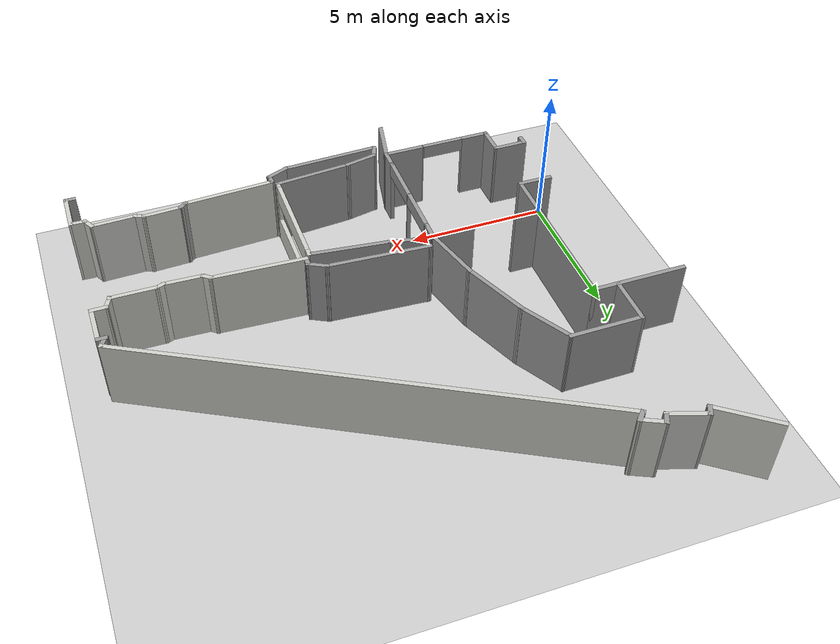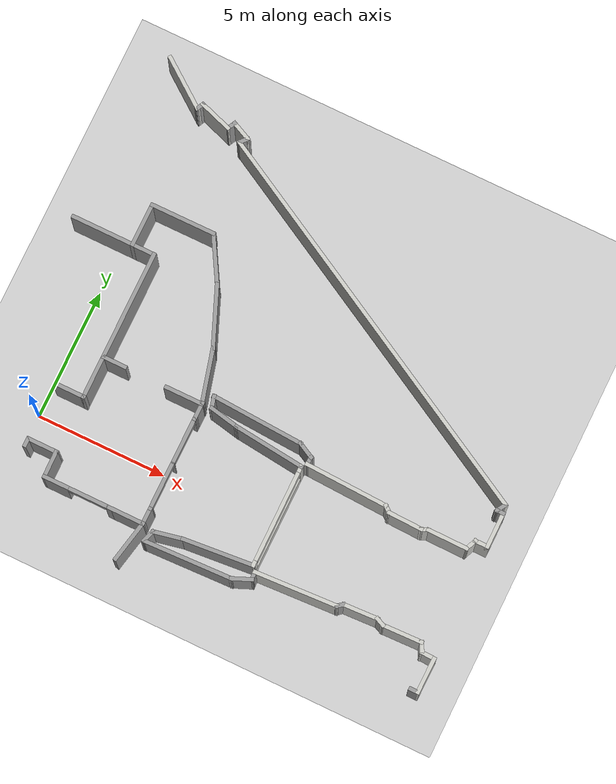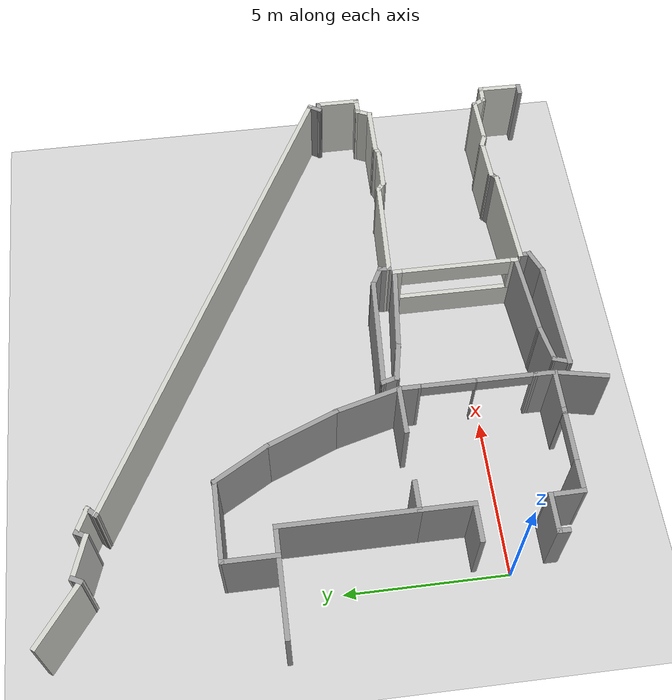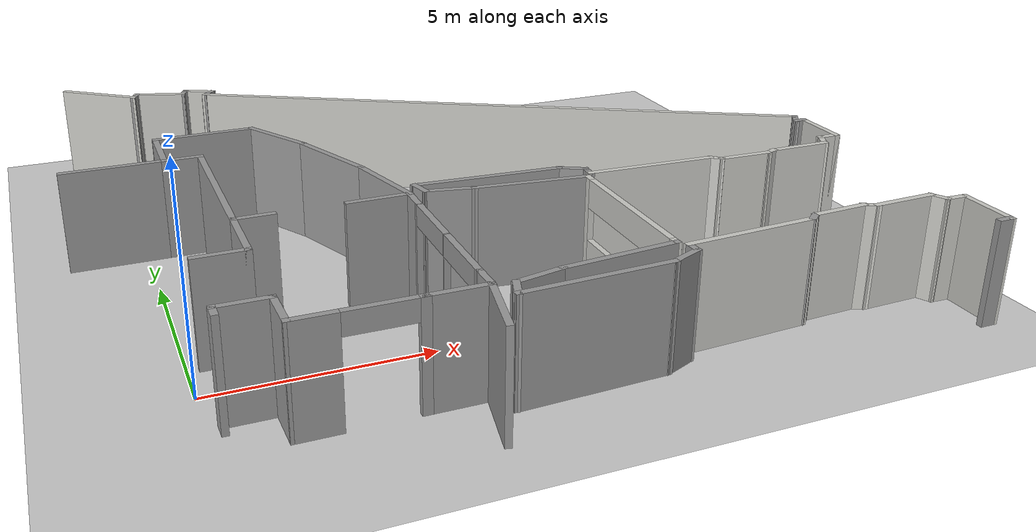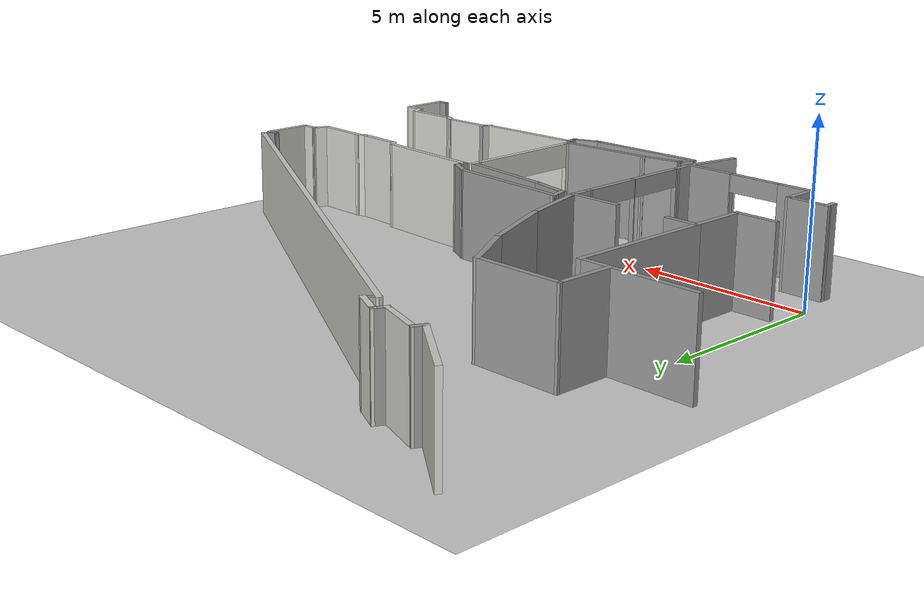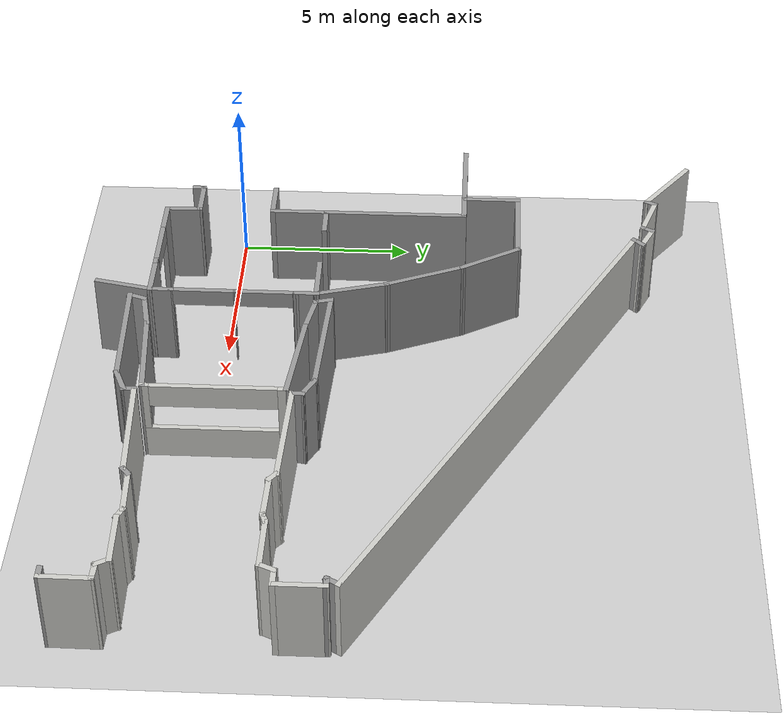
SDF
<sdf version="1.7">
 <world name="default">
  <model name="ground_plane">
   <static>1</static>
   <link name="link">
    <collision name="collision">
     <geometry><plane><normal>0 0 1</normal><size>100 100</size></plane></geometry>
     <surface>
      <contact><collide_bitmask>65535</collide_bitmask></contact>
      <friction><ode><mu>100</mu><mu2>50</mu2></ode></friction>
     </surface>
    </collision>
    <visual name="visual">
     <cast_shadows>0</cast_shadows>
     <geometry><plane><normal>0 0 1</normal><size>100 100</size></plane></geometry>
     <material>
      <script><uri>file://media/materials/scripts/gazebo.material</uri><name>Gazebo/Grey</name></script>
     </material>
    </visual>
   </link>
  </model>
  <model name="model">
   <pose>-4.1341 -0.05921 0 0 -0 0</pose>
   <link name="Wall_10">
    <collision name="Wall_10_Collision">
     <geometry><box><size>1.42547 0.15 2.5</size></box></geometry>
     <pose>0 0 1.25 0 -0 0</pose>
    </collision>
    <visual name="Wall_10_Visual">
     <pose>0 0 1.25 0 -0 0</pose>
     <geometry><box><size>1.42547 0.15 2.5</size></box></geometry>
     <material>
      <script><uri>file://media/materials/scripts/gazebo.material</uri><name>Gazebo/CeilingTiled</name></script>
      <ambient>1 1 1 1</ambient>
     </material>
     <meta><layer>0</layer></meta>
    </visual>
    <pose>17.742 2.04987 0 0 -0 3.11021</pose>
   </link>
   <link name="Wall_11">
    <collision name="Wall_11_Collision">
     <geometry><box><size>0.422349 0.15 2.5</size></box></geometry>
     <pose>0 0 1.25 0 -0 0</pose>
    </collision>
    <visual name="Wall_11_Visual">
     <pose>0 0 1.25 0 -0 0</pose>
     <geometry><box><size>0.422349 0.15 2.5</size></box></geometry>
     <material>
      <script><uri>file://media/materials/scripts/gazebo.material</uri><name>Gazebo/CeilingTiled</name></script>
      <ambient>1 1 1 1</ambient>
     </material>
     <meta><layer>0</layer></meta>
    </visual>
    <pose>16.9987 2.15564 0 0 -0 2.46029</pose>
   </link>
   <link name="Wall_118">
    <collision name="Wall_118_Collision">
     <geometry><box><size>2.26593 0.15 2.5</size></box></geometry>
     <pose>0 0 1.25 0 -0 0</pose>
    </collision>
    <visual name="Wall_118_Visual">
     <pose>0 0 1.25 0 -0 0</pose>
     <geometry><box><size>2.26593 0.15 2.5</size></box></geometry>
     <material>
      <script><uri>file://media/materials/scripts/gazebo.material</uri><name>Gazebo/CeilingTiled</name></script>
      <ambient>0.964706 1 0.972549 1</ambient>
     </material>
     <meta><layer>0</layer></meta>
    </visual>
    <pose>3.7645 12.9158 0 0 -0 2.50012</pose>
   </link>
   <link name="Wall_12">
    <collision name="Wall_12_Collision">
     <geometry><box><size>3.29739 0.15 2.5</size></box></geometry>
     <pose>0 0 1.25 0 -0 0</pose>
    </collision>
    <visual name="Wall_12_Visual">
     <pose>0 0 1.25 0 -0 0</pose>
     <geometry><box><size>3.29739 0.15 2.5</size></box></geometry>
     <material>
      <script><uri>file://media/materials/scripts/gazebo.material</uri><name>Gazebo/CeilingTiled</name></script>
      <ambient>0.964706 1 0.972549 1</ambient>
     </material>
     <meta><layer>0</layer></meta>
    </visual>
    <pose>15.3206 2.30716 0 0 -0 3.0998</pose>
   </link>
   <link name="Wall_124">
    <collision name="Wall_124_Collision">
     <geometry><box><size>0.404275 0.15 2.5</size></box></geometry>
     <pose>0 0 1.25 0 -0 0</pose>
    </collision>
    <visual name="Wall_124_Visual">
     <pose>0 0 1.25 0 -0 0</pose>
     <geometry><box><size>0.404275 0.15 2.5</size></box></geometry>
     <material>
      <script><uri>file://media/materials/scripts/gazebo.material</uri><name>Gazebo/Grey</name></script>
      <ambient>1 1 1 1</ambient>
     </material>
     <meta><layer>0</layer></meta>
    </visual>
    <pose>4.66935 12.3963 0 0 -0 1.10417</pose>
   </link>
   <link name="Wall_125">
    <collision name="Wall_125_Collision">
     <geometry><box><size>1.41013 0.15 2.5</size></box></geometry>
     <pose>0 0 1.25 0 -0 0</pose>
    </collision>
    <visual name="Wall_125_Visual">
     <pose>0 0 1.25 0 -0 0</pose>
     <geometry><box><size>1.41013 0.15 2.5</size></box></geometry>
     <material>
      <script><uri>file://media/materials/scripts/gazebo.material</uri><name>Gazebo/CeilingTiled</name></script>
      <ambient>0.964706 1 0.972549 1</ambient>
     </material>
     <meta><layer>0</layer></meta>
    </visual>
    <pose>5.3239 12.3095 0 0 -0 -0.323648</pose>
   </link>
   <link name="Wall_126">
    <collision name="Wall_126_Collision">
     <geometry><box><size>0.447598 0.15 2.5</size></box></geometry>
     <pose>0 0 1.25 0 -0 0</pose>
    </collision>
    <visual name="Wall_126_Visual">
     <pose>0 0 1.25 0 -0 0</pose>
     <geometry><box><size>0.447598 0.15 2.5</size></box></geometry>
     <material>
      <script><uri>file://media/materials/scripts/gazebo.material</uri><name>Gazebo/Grey</name></script>
      <ambient>1 1 1 1</ambient>
     </material>
     <meta><layer>0</layer></meta>
    </visual>
    <pose>5.98931 12.2414 0 0 -0 1.09579</pose>
   </link>
   <link name="Wall_127">
    <collision name="Wall_127_Collision">
     <geometry><box><size>0.894139 0.15 2.5</size></box></geometry>
     <pose>0 0 1.25 0 -0 0</pose>
    </collision>
    <visual name="Wall_127_Visual">
     <pose>0 0 1.25 0 -0 0</pose>
     <geometry><box><size>0.894139 0.15 2.5</size></box></geometry>
     <material>
      <script><uri>file://media/materials/scripts/gazebo.material</uri><name>Gazebo/CeilingTiled</name></script>
      <ambient>0.964706 1 0.972549 1</ambient>
     </material>
     <meta><layer>0</layer></meta>
    </visual>
    <pose>6.39384 12.215 0 0 -0 -0.440924</pose>
   </link>
   <link name="Wall_128">
    <collision name="Wall_128_Collision">
     <geometry><box><size>0.468928 0.15 2.5</size></box></geometry>
     <pose>0 0 1.25 0 -0 0</pose>
    </collision>
    <visual name="Wall_128_Visual">
     <pose>0 0 1.25 0 -0 0</pose>
     <geometry><box><size>0.468928 0.15 2.5</size></box></geometry>
     <material>
      <script><uri>file://media/materials/scripts/gazebo.material</uri><name>Gazebo/Grey</name></script>
      <ambient>1 1 1 1</ambient>
     </material>
     <meta><layer>0</layer></meta>
    </visual>
    <pose>6.62336 11.9379 0 0 -0 -2.30603</pose>
   </link>
   <link name="Wall_129">
    <collision name="Wall_129_Collision">
     <geometry><box><size>16.2931 0.15 2.5</size></box></geometry>
     <pose>0 0 1.25 0 -0 0</pose>
    </collision>
    <visual name="Wall_129_Visual">
     <pose>0 0 1.25 0 -0 0</pose>
     <geometry><box><size>16.2931 0.15 2.5</size></box></geometry>
     <material>
      <script><uri>file://media/materials/scripts/gazebo.material</uri><name>Gazebo/CeilingTiled</name></script>
      <ambient>0.964706 1 0.972549 1</ambient>
     </material>
     <meta><layer>0</layer></meta>
    </visual>
    <pose>13.6044 7.95817 0 0 -0 -0.498838</pose>
   </link>
   <link name="Wall_13">
    <collision name="Wall_13_Collision">
     <geometry><box><size>0.430684 0.15 2.5</size></box></geometry>
     <pose>0 0 1.25 0 -0 0</pose>
    </collision>
    <visual name="Wall_13_Visual">
     <pose>0 0 1.25 0 -0 0</pose>
     <geometry><box><size>0.430684 0.15 2.5</size></box></geometry>
     <material>
      <script><uri>file://media/materials/scripts/gazebo.material</uri><name>Gazebo/Grey</name></script>
      <ambient>1 1 1 1</ambient>
     </material>
     <meta><layer>0</layer></meta>
    </visual>
    <pose>13.7569 2.51299 0 0 -0 1.50965</pose>
   </link>
   <link name="Wall_16">
    <collision name="Wall_16_Collision">
     <geometry><box><size>0.771179 0.15 2.5</size></box></geometry>
     <pose>0 0 1.25 0 -0 0</pose>
    </collision>
    <visual name="Wall_16_Visual">
     <pose>0 0 1.25 0 -0 0</pose>
     <geometry><box><size>0.771179 0.15 2.5</size></box></geometry>
     <material>
      <script><uri>file://media/materials/scripts/gazebo.material</uri><name>Gazebo/Grey</name></script>
      <ambient>1 1 1 1</ambient>
     </material>
     <meta><layer>0</layer></meta>
    </visual>
    <pose>13.4901 2.7968 0 0 -0 2.6605</pose>
   </link>
   <link name="Wall_17">
    <collision name="Wall_17_Collision">
     <geometry><box><size>3.65354 0.15 2.5</size></box></geometry>
     <pose>0 0 1.25 0 -0 0</pose>
    </collision>
    <visual name="Wall_17_Visual">
     <pose>0 0 1.25 0 -0 0</pose>
     <geometry><box><size>3.65354 0.15 2.5</size></box></geometry>
     <material>
      <script><uri>file://media/materials/scripts/gazebo.material</uri><name>Gazebo/Grey</name></script>
      <ambient>1 1 1 1</ambient>
     </material>
     <meta><layer>0</layer></meta>
    </visual>
    <pose>11.4658 3.03915 0 0 -0 3.08526</pose>
   </link>
   <link name="Wall_18">
    <collision name="Wall_18_Collision">
     <geometry><box><size>0.585403 0.15 2.5</size></box></geometry>
     <pose>0 0 1.25 0 -0 0</pose>
    </collision>
    <visual name="Wall_18_Visual">
     <pose>0 0 1.25 0 -0 0</pose>
     <geometry><box><size>0.585403 0.15 2.5</size></box></geometry>
     <material>
      <script><uri>file://media/materials/scripts/gazebo.material</uri><name>Gazebo/Grey</name></script>
      <ambient>1 1 1 1</ambient>
     </material>
     <meta><layer>0</layer></meta>
    </visual>
    <pose>9.77269 2.92737 0 0 -0 -1.31117</pose>
   </link>
   <link name="Wall_19">
    <collision name="Wall_19_Collision">
     <geometry><box><size>1.25295 0.15 2.5</size></box></geometry>
     <pose>0 0 1.25 0 -0 0</pose>
    </collision>
    <visual name="Wall_19_Visual">
     <pose>0 0 1.25 0 -0 0</pose>
     <geometry><box><size>1.25295 0.15 2.5</size></box></geometry>
     <material>
      <script><uri>file://media/materials/scripts/gazebo.material</uri><name>Gazebo/Grey</name></script>
      <ambient>1 1 1 1</ambient>
     </material>
     <meta><layer>0</layer></meta>
    </visual>
    <pose>10.3696 2.61005 0 0 -0 -0.195106</pose>
   </link>
   <link name="Wall_2">
    <collision name="Wall_2_Collision">
     <geometry><box><size>0.5 0.15 2.5</size></box></geometry>
     <pose>0 0 1.25 0 -0 0</pose>
    </collision>
    <visual name="Wall_2_Visual">
     <pose>0 0 1.25 0 -0 0</pose>
     <geometry><box><size>0.5 0.15 2.5</size></box></geometry>
     <material>
      <script><uri>file://media/materials/scripts/gazebo.material</uri><name>Gazebo/Grey</name></script>
      <ambient>0.964706 1 0.972549 1</ambient>
     </material>
     <meta><layer>0</layer></meta>
    </visual>
    <pose>20.5997 3.94248 0 0 -0 -2.0944</pose>
   </link>
   <link name="Wall_20">
    <collision name="Wall_20_Collision">
     <geometry><box><size>2.84893 0.15 2.5</size></box></geometry>
     <pose>0 0 1.25 0 -0 0</pose>
    </collision>
    <visual name="Wall_20_Visual">
     <pose>0 0 1.25 0 -0 0</pose>
     <geometry><box><size>2.84893 0.15 2.5</size></box></geometry>
     <material>
      <script><uri>file://media/materials/scripts/gazebo.material</uri><name>Gazebo/Grey</name></script>
      <ambient>1 1 1 1</ambient>
     </material>
     <meta><layer>0</layer></meta>
    </visual>
    <pose>12.2519 2.35519 0 0 -0 -0.10985</pose>
   </link>
   <link name="Wall_208">
    <collision name="Wall_208_Collision">
     <geometry><box><size>0.413006 0.15 2.5</size></box></geometry>
     <pose>0 0 1.25 0 -0 0</pose>
    </collision>
    <visual name="Wall_208_Visual">
     <pose>0 0 1.25 0 -0 0</pose>
     <geometry><box><size>0.413006 0.15 2.5</size></box></geometry>
     <material>
      <script><uri>file://media/materials/scripts/gazebo.material</uri><name>Gazebo/Grey</name></script>
      <ambient>1 1 1 1</ambient>
     </material>
     <meta><layer>0</layer></meta>
    </visual>
    <pose>4.44758 -1.20894 0 0 -0 1.5708</pose>
   </link>
   <link name="Wall_212">
    <collision name="Wall_212_Collision">
     <geometry><box><size>1.46175 0.15 2.5</size></box></geometry>
     <pose>0 0 1.25 0 -0 0</pose>
    </collision>
    <visual name="Wall_212_Visual">
     <pose>0 0 1.25 0 -0 0</pose>
     <geometry><box><size>1.46175 0.15 2.5</size></box></geometry>
     <material>
      <script><uri>file://media/materials/scripts/gazebo.material</uri><name>Gazebo/Grey</name></script>
      <ambient>1 1 1 1</ambient>
     </material>
     <meta><layer>0</layer></meta>
    </visual>
    <pose>8.77888 -2.04713 0 0 -0 0</pose>
   </link>
   <link name="Wall_213">
    <collision name="Wall_213_Collision">
     <geometry><box><size>1.72597 0.15 2.5</size></box></geometry>
     <pose>0 0 1.25 0 -0 0</pose>
    </collision>
    <visual name="Wall_213_Visual">
     <pose>0 0 1.25 0 -0 0</pose>
     <geometry><box><size>1.72597 0.15 2.5</size></box></geometry>
     <material>
      <script><uri>file://media/materials/scripts/gazebo.material</uri><name>Gazebo/Grey</name></script>
      <ambient>1 1 1 1</ambient>
     </material>
     <meta><layer>0</layer></meta>
    </visual>
    <pose>9.27571 -2.81563 0 0 -0 -1.77403</pose>
   </link>
   <link name="Wall_223">
    <pose>6.86071 -2.04841 0 0 -0 3.14159</pose>
    <visual name="Wall_223_Visual_0">
     <pose>-1.26472 0 1.25 0 -0 0</pose>
     <geometry><box><size>0.220557 0.15 2.5</size></box></geometry>
     <material>
      <script><uri>file://media/materials/scripts/gazebo.material</uri><name>Gazebo/Grey</name></script>
      <ambient>1 1 1 1</ambient>
     </material>
     <meta><layer>0</layer></meta>
    </visual>
    <collision name="Wall_223_Collision_0">
     <geometry><box><size>0.220557 0.15 2.5</size></box></geometry>
     <pose>-1.26472 0 1.25 0 -0 0</pose>
    </collision>
    <visual name="Wall_223_Visual_1">
     <pose>0.857841 0 1.25 0 -0 0</pose>
     <geometry><box><size>1.03432 0.15 2.5</size></box></geometry>
     <material>
      <script><uri>file://media/materials/scripts/gazebo.material</uri><name>Gazebo/Grey</name></script>
      <ambient>1 1 1 1</ambient>
     </material>
     <meta><layer>0</layer></meta>
    </visual>
    <collision name="Wall_223_Collision_1">
     <geometry><box><size>1.03432 0.15 2.5</size></box></geometry>
     <pose>0.857841 0 1.25 0 -0 0</pose>
    </collision>
    <visual name="Wall_223_Visual_2">
     <pose>-0.406881 0 2.25 0 -0 0</pose>
     <geometry><box><size>1.49513 0.15 0.5</size></box></geometry>
     <material>
      <script><uri>file://media/materials/scripts/gazebo.material</uri><name>Gazebo/Grey</name></script>
      <ambient>1 1 1 1</ambient>
     </material>
     <meta><layer>0</layer></meta>
    </visual>
    <collision name="Wall_223_Collision_2">
     <geometry><box><size>1.49513 0.15 0.5</size></box></geometry>
     <pose>-0.406881 0 2.25 0 -0 0</pose>
    </collision>
   </link>
   <link name="Wall_226">
    <collision name="Wall_226_Collision">
     <geometry><box><size>1.25 0.15 2.5</size></box></geometry>
     <pose>0 0 1.25 0 -0 0</pose>
    </collision>
    <visual name="Wall_226_Visual">
     <pose>0 0 1.25 0 -0 0</pose>
     <geometry><box><size>1.25 0.15 2.5</size></box></geometry>
     <material>
      <script><uri>file://media/materials/scripts/gazebo.material</uri><name>Gazebo/Grey</name></script>
      <ambient>1 1 1 1</ambient>
     </material>
     <meta><layer>0</layer></meta>
    </visual>
    <pose>4.99758 -1.07743 0 0 -0 0</pose>
   </link>
   <link name="Wall_227">
    <collision name="Wall_227_Collision">
     <geometry><box><size>1.12106 0.15 2.5</size></box></geometry>
     <pose>0 0 1.25 0 -0 0</pose>
    </collision>
    <visual name="Wall_227_Visual">
     <pose>0 0 1.25 0 -0 0</pose>
     <geometry><box><size>1.12106 0.15 2.5</size></box></geometry>
     <material>
      <script><uri>file://media/materials/scripts/gazebo.material</uri><name>Gazebo/Grey</name></script>
      <ambient>1 1 1 1</ambient>
     </material>
     <meta><layer>0</layer></meta>
    </visual>
    <pose>5.55415 -1.56292 0 0 -0 -1.55727</pose>
   </link>
   <link name="Wall_229">
    <collision name="Wall_229_Collision">
     <geometry><box><size>0.75 0.15 2.5</size></box></geometry>
     <pose>0 0 1.25 0 -0 0</pose>
    </collision>
    <visual name="Wall_229_Visual">
     <pose>0 0 1.25 0 -0 0</pose>
     <geometry><box><size>0.75 0.15 2.5</size></box></geometry>
     <material>
      <script><uri>file://media/materials/scripts/gazebo.material</uri><name>Gazebo/Grey</name></script>
      <ambient>1 1 1 1</ambient>
     </material>
     <meta><layer>0</layer></meta>
    </visual>
    <pose>9.43476 -1.74386 0 0 -0 1.5708</pose>
   </link>
   <link name="Wall_23">
    <pose>13.5923 0.25608 0 0 -0 -1.5713</pose>
    <visual name="Wall_23_Visual_0">
     <pose>-1.87272 0 1.25 0 -0 0</pose>
     <geometry><box><size>0.306899 0.15 2.5</size></box></geometry>
     <material>
      <script><uri>file://media/materials/scripts/gazebo.material</uri><name>Gazebo/CeilingTiled</name></script>
      <ambient>0.964706 1 0.972549 1</ambient>
     </material>
     <meta><layer>0</layer></meta>
    </visual>
    <collision name="Wall_23_Collision_0">
     <geometry><box><size>0.306899 0.15 2.5</size></box></geometry>
     <pose>-1.87272 0 1.25 0 -0 0</pose>
    </collision>
    <visual name="Wall_23_Visual_1">
     <pose>0.15345 0 0.5 0 -0 0</pose>
     <geometry><box><size>3.74545 0.15 1</size></box></geometry>
     <material>
      <script><uri>file://media/materials/scripts/gazebo.material</uri><name>Gazebo/CeilingTiled</name></script>
      <ambient>0.964706 1 0.972549 1</ambient>
     </material>
     <meta><layer>0</layer></meta>
    </visual>
    <collision name="Wall_23_Collision_1">
     <geometry><box><size>3.74545 0.15 1</size></box></geometry>
     <pose>0.15345 0 0.5 0 -0 0</pose>
    </collision>
    <visual name="Wall_23_Visual_2">
     <pose>1.89845 0 1.75 0 -0 0</pose>
     <geometry><box><size>0.255448 0.15 1.5</size></box></geometry>
     <material>
      <script><uri>file://media/materials/scripts/gazebo.material</uri><name>Gazebo/CeilingTiled</name></script>
      <ambient>0.964706 1 0.972549 1</ambient>
     </material>
     <meta><layer>0</layer></meta>
    </visual>
    <collision name="Wall_23_Collision_2">
     <geometry><box><size>0.255448 0.15 1.5</size></box></geometry>
     <pose>1.89845 0 1.75 0 -0 0</pose>
    </collision>
    <visual name="Wall_23_Visual_3">
     <pose>0.025726 0 2.15 0 -0 0</pose>
     <geometry><box><size>3.49 0.15 0.7</size></box></geometry>
     <material>
      <script><uri>file://media/materials/scripts/gazebo.material</uri><name>Gazebo/CeilingTiled</name></script>
      <ambient>0.964706 1 0.972549 1</ambient>
     </material>
     <meta><layer>0</layer></meta>
    </visual>
    <collision name="Wall_23_Collision_3">
     <geometry><box><size>3.49 0.15 0.7</size></box></geometry>
     <pose>0.025726 0 2.15 0 -0 0</pose>
    </collision>
   </link>
   <link name="Wall_231">
    <collision name="Wall_231_Collision">
     <geometry><box><size>0.75 0.15 2.5</size></box></geometry>
     <pose>0 0 1.25 0 -0 0</pose>
    </collision>
    <visual name="Wall_231_Visual">
     <pose>0 0 1.25 0 -0 0</pose>
     <geometry><box><size>0.75 0.15 2.5</size></box></geometry>
     <material>
      <script><uri>file://media/materials/scripts/gazebo.material</uri><name>Gazebo/Grey</name></script>
      <ambient>1 1 1 1</ambient>
     </material>
     <meta><layer>0</layer></meta>
    </visual>
    <pose>9.44804 2.42522 0 0 -0 1.5708</pose>
   </link>
   <link name="Wall_238">
    <collision name="Wall_238_Collision">
     <geometry><box><size>2.5 0.15 2.5</size></box></geometry>
     <pose>0 0 1.25 0 -0 0</pose>
    </collision>
    <visual name="Wall_238_Visual">
     <pose>0 0 1.25 0 -0 0</pose>
     <geometry><box><size>2.5 0.15 2.5</size></box></geometry>
     <material>
      <script><uri>file://media/materials/scripts/gazebo.material</uri><name>Gazebo/Grey</name></script>
      <ambient>1 1 1 1</ambient>
     </material>
     <meta><layer>0</layer></meta>
    </visual>
    <pose>3.52465 6.8111 0 0 -0 0</pose>
   </link>
   <link name="Wall_239">
    <collision name="Wall_239_Collision">
     <geometry><box><size>1.7501 0.15 2.5</size></box></geometry>
     <pose>0 0 1.25 0 -0 0</pose>
    </collision>
    <visual name="Wall_239_Visual">
     <pose>0 0 1.25 0 -0 0</pose>
     <geometry><box><size>1.7501 0.15 2.5</size></box></geometry>
     <material>
      <script><uri>file://media/materials/scripts/gazebo.material</uri><name>Gazebo/Grey</name></script>
      <ambient>1 1 1 1</ambient>
     </material>
     <meta><layer>0</layer></meta>
    </visual>
    <pose>4.69965 7.6111 0 0 -0 1.5708</pose>
   </link>
   <link name="Wall_24">
    <collision name="Wall_24_Collision">
     <geometry><box><size>2.8 0.15 2.5</size></box></geometry>
     <pose>0 0 1.25 0 -0 0</pose>
    </collision>
    <visual name="Wall_24_Visual">
     <pose>0 0 1.25 0 -0 0</pose>
     <geometry><box><size>2.8 0.15 2.5</size></box></geometry>
     <material>
      <script><uri>file://media/materials/scripts/gazebo.material</uri><name>Gazebo/Grey</name></script>
      <ambient>1 1 1 1</ambient>
     </material>
     <meta><layer>0</layer></meta>
    </visual>
    <pose>12.2713 -1.81009 0 0 -0 -3.05469</pose>
   </link>
   <link name="Wall_242">
    <collision name="Wall_242_Collision">
     <geometry><box><size>2.5748 0.15 2.5</size></box></geometry>
     <pose>0 0 1.25 0 -0 0</pose>
    </collision>
    <visual name="Wall_242_Visual">
     <pose>0 0 1.25 0 -0 0</pose>
     <geometry><box><size>2.5748 0.15 2.5</size></box></geometry>
     <material>
      <script><uri>file://media/materials/scripts/gazebo.material</uri><name>Gazebo/Grey</name></script>
      <ambient>1 1 1 1</ambient>
     </material>
     <meta><layer>0</layer></meta>
    </visual>
    <pose>5.91205 8.41564 0 0 -0 0.003747</pose>
   </link>
   <link name="Wall_243">
    <collision name="Wall_243_Collision">
     <geometry><box><size>2 0.15 2.5</size></box></geometry>
     <pose>0 0 1.25 0 -0 0</pose>
    </collision>
    <visual name="Wall_243_Visual">
     <pose>0 0 1.25 0 -0 0</pose>
     <geometry><box><size>2 0.15 2.5</size></box></geometry>
     <material>
      <script><uri>file://media/materials/scripts/gazebo.material</uri><name>Gazebo/Grey</name></script>
      <ambient>1 1 1 1</ambient>
     </material>
     <meta><layer>0</layer></meta>
    </visual>
    <pose>7.58694 7.61911 0 0 -0 -1.0472</pose>
   </link>
   <link name="Wall_244">
    <collision name="Wall_244_Collision">
     <geometry><box><size>2.46321 0.15 2.5</size></box></geometry>
     <pose>0 0 1.25 0 -0 0</pose>
    </collision>
    <visual name="Wall_244_Visual">
     <pose>0 0 1.25 0 -0 0</pose>
     <geometry><box><size>2.46321 0.15 2.5</size></box></geometry>
     <material>
      <script><uri>file://media/materials/scripts/gazebo.material</uri><name>Gazebo/Grey</name></script>
      <ambient>1 1 1 1</ambient>
     </material>
     <meta><layer>0</layer></meta>
    </visual>
    <pose>8.48768 5.74767 0 0 -0 -1.18219</pose>
   </link>
   <link name="Wall_245">
    <collision name="Wall_245_Collision">
     <geometry><box><size>2.19484 0.15 2.5</size></box></geometry>
     <pose>0 0 1.25 0 -0 0</pose>
    </collision>
    <visual name="Wall_245_Visual">
     <pose>0 0 1.25 0 -0 0</pose>
     <geometry><box><size>2.19484 0.15 2.5</size></box></geometry>
     <material>
      <script><uri>file://media/materials/scripts/gazebo.material</uri><name>Gazebo/Grey</name></script>
      <ambient>1 1 1 1</ambient>
     </material>
     <meta><layer>0</layer></meta>
    </visual>
    <pose>9.18827 3.68912 0 0 -0 -1.3113</pose>
   </link>
   <link name="Wall_247">
    <collision name="Wall_247_Collision">
     <geometry><box><size>1 0.15 2.5</size></box></geometry>
     <pose>0 0 1.25 0 -0 0</pose>
    </collision>
    <visual name="Wall_247_Visual">
     <pose>0 0 1.25 0 -0 0</pose>
     <geometry><box><size>1 0.15 2.5</size></box></geometry>
     <material>
      <script><uri>file://media/materials/scripts/gazebo.material</uri><name>Gazebo/Grey</name></script>
      <ambient>1 1 1 1</ambient>
     </material>
     <meta><layer>0</layer></meta>
    </visual>
    <pose>5.12465 6.8111 0 0 -0 0</pose>
   </link>
   <link name="Wall_249">
    <collision name="Wall_249_Collision">
     <geometry><box><size>4.25 0.15 2.5</size></box></geometry>
     <pose>0 0 1.25 0 -0 0</pose>
    </collision>
    <visual name="Wall_249_Visual">
     <pose>0 0 1.25 0 -0 0</pose>
     <geometry><box><size>4.25 0.15 2.5</size></box></geometry>
     <material>
      <script><uri>file://media/materials/scripts/gazebo.material</uri><name>Gazebo/Grey</name></script>
      <ambient>1 1 1 1</ambient>
     </material>
     <meta><layer>0</layer></meta>
    </visual>
    <pose>5.54965 4.7611 0 0 -0 -1.5708</pose>
   </link>
   <link name="Wall_25">
    <collision name="Wall_25_Collision">
     <geometry><box><size>1.24238 0.15 2.5</size></box></geometry>
     <pose>0 0 1.25 0 -0 0</pose>
    </collision>
    <visual name="Wall_25_Visual">
     <pose>0 0 1.25 0 -0 0</pose>
     <geometry><box><size>1.24238 0.15 2.5</size></box></geometry>
     <material>
      <script><uri>file://media/materials/scripts/gazebo.material</uri><name>Gazebo/Grey</name></script>
      <ambient>1 1 1 1</ambient>
     </material>
     <meta><layer>0</layer></meta>
    </visual>
    <pose>10.4163 -2.03509 0 0 -0 -2.93881</pose>
   </link>
   <link name="Wall_251">
    <collision name="Wall_251_Collision">
     <geometry><box><size>1 0.15 2.5</size></box></geometry>
     <pose>0 0 1.25 0 -0 0</pose>
    </collision>
    <visual name="Wall_251_Visual">
     <pose>0 0 1.25 0 -0 0</pose>
     <geometry><box><size>1 0.15 2.5</size></box></geometry>
     <material>
      <script><uri>file://media/materials/scripts/gazebo.material</uri><name>Gazebo/Grey</name></script>
      <ambient>1 1 1 1</ambient>
     </material>
     <meta><layer>0</layer></meta>
    </visual>
    <pose>5.97465 2.7111 0 0 -0 0</pose>
   </link>
   <link name="Wall_253">
    <collision name="Wall_253_Collision">
     <geometry><box><size>1.75 0.15 2.5</size></box></geometry>
     <pose>0 0 1.25 0 -0 0</pose>
    </collision>
    <visual name="Wall_253_Visual">
     <pose>0 0 1.25 0 -0 0</pose>
     <geometry><box><size>1.75 0.15 2.5</size></box></geometry>
     <material>
      <script><uri>file://media/materials/scripts/gazebo.material</uri><name>Gazebo/Grey</name></script>
      <ambient>1 1 1 1</ambient>
     </material>
     <meta><layer>0</layer></meta>
    </visual>
    <pose>5.54965 1.9111 0 0 -0 -1.5708</pose>
   </link>
   <link name="Wall_254">
    <collision name="Wall_254_Collision">
     <geometry><box><size>1.25 0.15 2.5</size></box></geometry>
     <pose>0 0 1.25 0 -0 0</pose>
    </collision>
    <visual name="Wall_254_Visual">
     <pose>0 0 1.25 0 -0 0</pose>
     <geometry><box><size>1.25 0.15 2.5</size></box></geometry>
     <material>
      <script><uri>file://media/materials/scripts/gazebo.material</uri><name>Gazebo/Grey</name></script>
      <ambient>1 1 1 1</ambient>
     </material>
     <meta><layer>0</layer></meta>
    </visual>
    <pose>4.99965 1.1111 0 0 -0 3.14159</pose>
   </link>
   <link name="Wall_258">
    <collision name="Wall_258_Collision">
     <geometry><box><size>1.5546 0.15 2.5</size></box></geometry>
     <pose>0 0 1.25 0 -0 0</pose>
    </collision>
    <visual name="Wall_258_Visual">
     <pose>0 0 1.25 0 -0 0</pose>
     <geometry><box><size>1.5546 0.15 2.5</size></box></geometry>
     <material>
      <script><uri>file://media/materials/scripts/gazebo.material</uri><name>Gazebo/Grey</name></script>
      <ambient>1 1 1 1</ambient>
     </material>
     <meta><layer>0</layer></meta>
    </visual>
    <pose>8.74832 2.69877 0 0 -0 0.003078</pose>
   </link>
   <link name="Wall_27">
    <collision name="Wall_27_Collision">
     <geometry><box><size>0.603733 0.15 2.5</size></box></geometry>
     <pose>0 0 1.25 0 -0 0</pose>
    </collision>
    <visual name="Wall_27_Visual">
     <pose>0 0 1.25 0 -0 0</pose>
     <geometry><box><size>0.603733 0.15 2.5</size></box></geometry>
     <material>
      <script><uri>file://media/materials/scripts/gazebo.material</uri><name>Gazebo/Grey</name></script>
      <ambient>1 1 1 1</ambient>
     </material>
     <meta><layer>0</layer></meta>
    </visual>
    <pose>9.80722 -2.35952 0 0 -0 -1.90344</pose>
   </link>
   <link name="Wall_28">
    <collision name="Wall_28_Collision">
     <geometry><box><size>3.51448 0.15 2.5</size></box></geometry>
     <pose>0 0 1.25 0 -0 0</pose>
    </collision>
    <visual name="Wall_28_Visual">
     <pose>0 0 1.25 0 -0 0</pose>
     <geometry><box><size>3.51448 0.15 2.5</size></box></geometry>
     <material>
      <script><uri>file://media/materials/scripts/gazebo.material</uri><name>Gazebo/Grey</name></script>
      <ambient>1 1 1 1</ambient>
     </material>
     <meta><layer>0</layer></meta>
    </visual>
    <pose>11.4141 -2.51106 0 0 -0 0.037398</pose>
   </link>
   <link name="Wall_3">
    <collision name="Wall_3_Collision">
     <geometry><box><size>0.38758 0.15 2.5</size></box></geometry>
     <pose>0 0 1.25 0 -0 0</pose>
    </collision>
    <visual name="Wall_3_Visual">
     <pose>0 0 1.25 0 -0 0</pose>
     <geometry><box><size>0.38758 0.15 2.5</size></box></geometry>
     <material>
      <script><uri>file://media/materials/scripts/gazebo.material</uri><name>Gazebo/Grey</name></script>
      <ambient>1 1 1 1</ambient>
     </material>
     <meta><layer>0</layer></meta>
    </visual>
    <pose>20.6309 3.79128 0 0 -0 0.002945</pose>
   </link>
   <link name="Wall_31">
    <collision name="Wall_31_Collision">
     <geometry><box><size>0.875248 0.15 2.5</size></box></geometry>
     <pose>0 0 1.25 0 -0 0</pose>
    </collision>
    <visual name="Wall_31_Visual">
     <pose>0 0 1.25 0 -0 0</pose>
     <geometry><box><size>0.875248 0.15 2.5</size></box></geometry>
     <material>
      <script><uri>file://media/materials/scripts/gazebo.material</uri><name>Gazebo/Grey</name></script>
      <ambient>1 1 1 1</ambient>
     </material>
     <meta><layer>0</layer></meta>
    </visual>
    <pose>13.4295 -2.30809 0 0 -0 0.39661</pose>
   </link>
   <link name="Wall_32">
    <collision name="Wall_32_Collision">
     <geometry><box><size>0.44165 0.15 2.5</size></box></geometry>
     <pose>0 0 1.25 0 -0 0</pose>
    </collision>
    <visual name="Wall_32_Visual">
     <pose>0 0 1.25 0 -0 0</pose>
     <geometry><box><size>0.44165 0.15 2.5</size></box></geometry>
     <material>
      <script><uri>file://media/materials/scripts/gazebo.material</uri><name>Gazebo/Grey</name></script>
      <ambient>1 1 1 1</ambient>
     </material>
     <meta><layer>0</layer></meta>
    </visual>
    <pose>13.7583 -2.02221 0 0 -0 1.60999</pose>
   </link>
   <link name="Wall_338">
    <pose>9.4414 0.340677 0 0 -0 -1.57452</pose>
    <visual name="Wall_338_Visual_0">
     <pose>-1.77744 0 1.25 0 -0 0</pose>
     <geometry><box><size>0.164214 0.15 2.5</size></box></geometry>
     <material>
      <script><uri>file://media/materials/scripts/gazebo.material</uri><name>Gazebo/Grey</name></script>
      <ambient>1 1 1 1</ambient>
     </material>
     <meta><layer>0</layer></meta>
    </visual>
    <collision name="Wall_338_Collision_0">
     <geometry><box><size>0.164214 0.15 2.5</size></box></geometry>
     <pose>-1.77744 0 1.25 0 -0 0</pose>
    </collision>
    <visual name="Wall_338_Visual_1">
     <pose>-0.017237 0 1.25 0 -0 0</pose>
     <geometry><box><size>0.035105 0.15 2.5</size></box></geometry>
     <material>
      <script><uri>file://media/materials/scripts/gazebo.material</uri><name>Gazebo/Grey</name></script>
      <ambient>1 1 1 1</ambient>
     </material>
     <meta><layer>0</layer></meta>
    </visual>
    <collision name="Wall_338_Collision_1">
     <geometry><box><size>0.035105 0.15 2.5</size></box></geometry>
     <pose>-0.017237 0 1.25 0 -0 0</pose>
    </collision>
    <visual name="Wall_338_Visual_2">
     <pose>1.79806 0 1.25 0 -0 0</pose>
     <geometry><box><size>0.122985 0.15 2.5</size></box></geometry>
     <material>
      <script><uri>file://media/materials/scripts/gazebo.material</uri><name>Gazebo/Grey</name></script>
      <ambient>1 1 1 1</ambient>
     </material>
     <meta><layer>0</layer></meta>
    </visual>
    <collision name="Wall_338_Collision_2">
     <geometry><box><size>0.122985 0.15 2.5</size></box></geometry>
     <pose>1.79806 0 1.25 0 -0 0</pose>
    </collision>
    <visual name="Wall_338_Visual_3">
     <pose>-0.865063 0 2.25 0 -0 0</pose>
     <geometry><box><size>1.66054 0.15 0.5</size></box></geometry>
     <material>
      <script><uri>file://media/materials/scripts/gazebo.material</uri><name>Gazebo/Grey</name></script>
      <ambient>1 1 1 1</ambient>
     </material>
     <meta><layer>0</layer></meta>
    </visual>
    <collision name="Wall_338_Collision_3">
     <geometry><box><size>1.66054 0.15 0.5</size></box></geometry>
     <pose>-0.865063 0 2.25 0 -0 0</pose>
    </collision>
    <visual name="Wall_338_Visual_4">
     <pose>0.86844 0 2.25 0 -0 0</pose>
     <geometry><box><size>1.73625 0.15 0.5</size></box></geometry>
     <material>
      <script><uri>file://media/materials/scripts/gazebo.material</uri><name>Gazebo/Grey</name></script>
      <ambient>1 1 1 1</ambient>
     </material>
     <meta><layer>0</layer></meta>
    </visual>
    <collision name="Wall_338_Collision_4">
     <geometry><box><size>1.73625 0.15 0.5</size></box></geometry>
     <pose>0.86844 0 2.25 0 -0 0</pose>
    </collision>
   </link>
   <link name="Wall_34">
    <collision name="Wall_34_Collision">
     <geometry><box><size>3.2685 0.15 2.5</size></box></geometry>
     <pose>0 0 1.25 0 -0 0</pose>
    </collision>
    <visual name="Wall_34_Visual">
     <pose>0 0 1.25 0 -0 0</pose>
     <geometry><box><size>3.2685 0.15 2.5</size></box></geometry>
     <material>
      <script><uri>file://media/materials/scripts/gazebo.material</uri><name>Gazebo/CeilingTiled</name></script>
      <ambient>0.964706 1 0.972549 1</ambient>
     </material>
     <meta><layer>0</layer></meta>
    </visual>
    <pose>15.3097 -1.79513 0 0 -0 0.052154</pose>
   </link>
   <link name="Wall_35">
    <collision name="Wall_35_Collision">
     <geometry><box><size>0.392084 0.15 2.5</size></box></geometry>
     <pose>0 0 1.25 0 -0 0</pose>
    </collision>
    <visual name="Wall_35_Visual">
     <pose>0 0 1.25 0 -0 0</pose>
     <geometry><box><size>0.392084 0.15 2.5</size></box></geometry>
     <material>
      <script><uri>file://media/materials/scripts/gazebo.material</uri><name>Gazebo/Grey</name></script>
      <ambient>0.964706 1 0.972549 1</ambient>
     </material>
     <meta><layer>0</layer></meta>
    </visual>
    <pose>16.9613 -1.63823 0 0 -0 0.674741</pose>
   </link>
   <link name="Wall_36">
    <collision name="Wall_36_Collision">
     <geometry><box><size>1.44442 0.15 2.5</size></box></geometry>
     <pose>0 0 1.25 0 -0 0</pose>
    </collision>
    <visual name="Wall_36_Visual">
     <pose>0 0 1.25 0 -0 0</pose>
     <geometry><box><size>1.44442 0.15 2.5</size></box></geometry>
     <material>
      <script><uri>file://media/materials/scripts/gazebo.material</uri><name>Gazebo/CeilingTiled</name></script>
      <ambient>0.964706 1 0.972549 1</ambient>
     </material>
     <meta><layer>0</layer></meta>
    </visual>
    <pose>17.7024 -1.53237 0 0 -0 0.04675</pose>
   </link>
   <link name="Wall_37">
    <collision name="Wall_37_Collision">
     <geometry><box><size>0.447886 0.15 2.5</size></box></geometry>
     <pose>0 0 1.25 0 -0 0</pose>
    </collision>
    <visual name="Wall_37_Visual">
     <pose>0 0 1.25 0 -0 0</pose>
     <geometry><box><size>0.447886 0.15 2.5</size></box></geometry>
     <material>
      <script><uri>file://media/materials/scripts/gazebo.material</uri><name>Gazebo/CeilingTiled</name></script>
      <ambient>0.964706 1 0.972549 1</ambient>
     </material>
     <meta><layer>0</layer></meta>
    </visual>
    <pose>18.485 -1.56262 0 0 -0 -0.418224</pose>
   </link>
   <link name="Wall_39">
    <collision name="Wall_39_Collision">
     <geometry><box><size>1.63299 0.15 2.5</size></box></geometry>
     <pose>0 0 1.25 0 -0 0</pose>
    </collision>
    <visual name="Wall_39_Visual">
     <pose>0 0 1.25 0 -0 0</pose>
     <geometry><box><size>1.63299 0.15 2.5</size></box></geometry>
     <material>
      <script><uri>file://media/materials/scripts/gazebo.material</uri><name>Gazebo/CeilingTiled</name></script>
      <ambient>0.964706 1 0.972549 1</ambient>
     </material>
     <meta><layer>0</layer></meta>
    </visual>
    <pose>19.3621 -1.60043 0 0 -0 0.030603</pose>
   </link>
   <link name="Wall_4">
    <collision name="Wall_4_Collision">
     <geometry><box><size>1.46 0.15 2.5</size></box></geometry>
     <pose>0 0 1.25 0 -0 0</pose>
    </collision>
    <visual name="Wall_4_Visual">
     <pose>0 0 1.25 0 -0 0</pose>
     <geometry><box><size>1.46 0.15 2.5</size></box></geometry>
     <material>
      <script><uri>file://media/materials/scripts/gazebo.material</uri><name>Gazebo/CeilingTiled</name></script>
      <ambient>0.964706 1 0.972549 1</ambient>
     </material>
     <meta><layer>0</layer></meta>
    </visual>
    <pose>20.7496 3.13663 0 0 -0 -1.5708</pose>
   </link>
   <link name="Wall_40">
    <collision name="Wall_40_Collision">
     <geometry><box><size>0.512082 0.15 2.5</size></box></geometry>
     <pose>0 0 1.25 0 -0 0</pose>
    </collision>
    <visual name="Wall_40_Visual">
     <pose>0 0 1.25 0 -0 0</pose>
     <geometry><box><size>0.512082 0.15 2.5</size></box></geometry>
     <material>
      <script><uri>file://media/materials/scripts/gazebo.material</uri><name>Gazebo/CeilingTiled</name></script>
      <ambient>0.964706 1 0.972549 1</ambient>
     </material>
     <meta><layer>0</layer></meta>
    </visual>
    <pose>20.1901 -1.73653 0 0 -0 -1.06978</pose>
   </link>
   <link name="Wall_41">
    <collision name="Wall_41_Collision">
     <geometry><box><size>0.62661 0.15 2.5</size></box></geometry>
     <pose>0 0 1.25 0 -0 0</pose>
    </collision>
    <visual name="Wall_41_Visual">
     <pose>0 0 1.25 0 -0 0</pose>
     <geometry><box><size>0.62661 0.15 2.5</size></box></geometry>
     <material>
      <script><uri>file://media/materials/scripts/gazebo.material</uri><name>Gazebo/CeilingTiled</name></script>
      <ambient>0.964706 1 0.972549 1</ambient>
     </material>
     <meta><layer>0</layer></meta>
    </visual>
    <pose>20.5152 -1.90288 0 0 -0 -0.031735</pose>
   </link>
   <link name="Wall_42">
    <collision name="Wall_42_Collision">
     <geometry><box><size>1.46578 0.15 2.5</size></box></geometry>
     <pose>0 0 1.25 0 -0 0</pose>
    </collision>
    <visual name="Wall_42_Visual">
     <pose>0 0 1.25 0 -0 0</pose>
     <geometry><box><size>1.46578 0.15 2.5</size></box></geometry>
     <material>
      <script><uri>file://media/materials/scripts/gazebo.material</uri><name>Gazebo/CeilingTiled</name></script>
      <ambient>0.964706 1 0.972549 1</ambient>
     </material>
     <meta><layer>0</layer></meta>
    </visual>
    <pose>20.7458 -2.56829 0 0 -0 -1.58229</pose>
   </link>
   <link name="Wall_43">
    <collision name="Wall_43_Collision">
     <geometry><box><size>0.422212 0.15 2.5</size></box></geometry>
     <pose>0 0 1.25 0 -0 0</pose>
    </collision>
    <visual name="Wall_43_Visual">
     <pose>0 0 1.25 0 -0 0</pose>
     <geometry><box><size>0.422212 0.15 2.5</size></box></geometry>
     <material>
      <script><uri>file://media/materials/scripts/gazebo.material</uri><name>Gazebo/Grey</name></script>
      <ambient>1 1 1 1</ambient>
     </material>
     <meta><layer>0</layer></meta>
    </visual>
    <pose>20.6022 -3.22614 0 0 -0 3.14159</pose>
   </link>
   <link name="Wall_5">
    <collision name="Wall_5_Collision">
     <geometry><box><size>0.620106 0.15 2.5</size></box></geometry>
     <pose>0 0 1.25 0 -0 0</pose>
    </collision>
    <visual name="Wall_5_Visual">
     <pose>0 0 1.25 0 -0 0</pose>
     <geometry><box><size>0.620106 0.15 2.5</size></box></geometry>
     <material>
      <script><uri>file://media/materials/scripts/gazebo.material</uri><name>Gazebo/CeilingTiled</name></script>
      <ambient>0.964706 1 0.972549 1</ambient>
     </material>
     <meta><layer>0</layer></meta>
    </visual>
    <pose>20.5146 2.48163 0 0 -0 3.14159</pose>
   </link>
   <link name="Wall_7">
    <collision name="Wall_7_Collision">
     <geometry><box><size>0.563016 0.15 2.5</size></box></geometry>
     <pose>0 0 1.25 0 -0 0</pose>
    </collision>
    <visual name="Wall_7_Visual">
     <pose>0 0 1.25 0 -0 0</pose>
     <geometry><box><size>0.563016 0.15 2.5</size></box></geometry>
     <material>
      <script><uri>file://media/materials/scripts/gazebo.material</uri><name>Gazebo/CeilingTiled</name></script>
      <ambient>0.964706 1 0.972549 1</ambient>
     </material>
     <meta><layer>0</layer></meta>
    </visual>
    <pose>20.1958 2.29291 0 0 -0 -1.98889</pose>
   </link>
   <link name="Wall_8">
    <collision name="Wall_8_Collision">
     <geometry><box><size>1.64232 0.15 2.5</size></box></geometry>
     <pose>0 0 1.25 0 -0 0</pose>
    </collision>
    <visual name="Wall_8_Visual">
     <pose>0 0 1.25 0 -0 0</pose>
     <geometry><box><size>1.64232 0.15 2.5</size></box></geometry>
     <material>
      <script><uri>file://media/materials/scripts/gazebo.material</uri><name>Gazebo/CeilingTiled</name></script>
      <ambient>0.964706 1 0.972549 1</ambient>
     </material>
     <meta><layer>0</layer></meta>
    </visual>
    <pose>19.3658 2.1099 0 0 -0 3.13393</pose>
   </link>
   <link name="Wall_9">
    <collision name="Wall_9_Collision">
     <geometry><box><size>0.404992 0.15 2.5</size></box></geometry>
     <pose>0 0 1.25 0 -0 0</pose>
    </collision>
    <visual name="Wall_9_Visual">
     <pose>0 0 1.25 0 -0 0</pose>
     <geometry><box><size>0.404992 0.15 2.5</size></box></geometry>
     <material>
      <script><uri>file://media/materials/scripts/gazebo.material</uri><name>Gazebo/CeilingTiled</name></script>
      <ambient>1 1 1 1</ambient>
     </material>
     <meta><layer>0</layer></meta>
    </visual>
    <pose>18.4996 2.07274 0 0 -0 -2.79857</pose>
   </link>
   <static>1</static>
  </model>
 </world>
</sdf>
